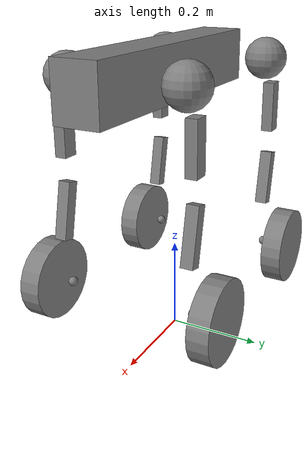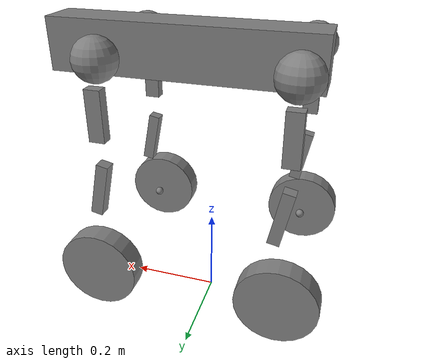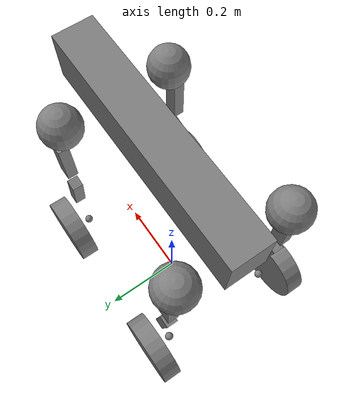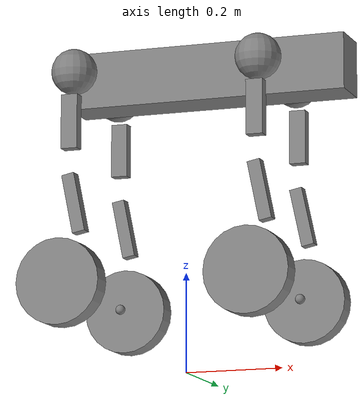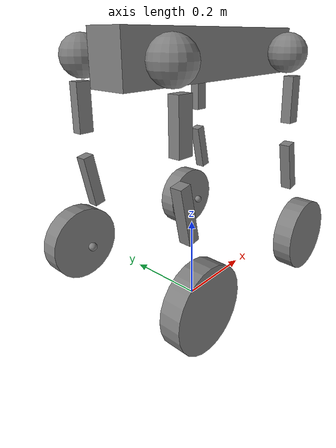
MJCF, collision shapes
<mujoco model="go2">
  <compiler angle="radian" meshdir="assets/"/>

  <option impratio="100" cone="elliptic"/>

  <default>
    <default class="go2">
      <joint armature="0.01" damping="0.1" frictionloss="0.2"/>
      <geom condim="1" friction="0.4" margin="0.001"/>
      <general ctrlrange="-23.7 23.7"/>
      <default class="abduction">
        <joint range="-1.0472 1.0472"/>
      </default>
      <default class="hip">
        <default class="front_hip">
          <joint range="-1.5708 3.4907"/>
        </default>
        <default class="back_hip">
          <joint range="-0.5236 4.5379"/>
        </default>
      </default>
      <default class="knee">
        <joint range="-2.7227 -0.83776"/>
        <general ctrlrange="-45.43 45.43"/>
      </default>
      <default class="visual">
        <geom type="mesh" contype="0" conaffinity="0" group="2"/>
      </default>
      <default class="collision">
        <geom group="3"/>
        <default class="foot">
          <geom size="0.022 0 0" condim="6" priority="1" friction="0.8 0.02 0.01"/>
        </default>
      </default>
    </default>
  </default>

  <asset>
    <material name="metal" rgba="0.9 0.95 0.95 1"/>
    <material name="black" rgba="0 0 0 1"/>
    <material name="white"/>
    <material name="gray" rgba="0.671705 0.692426 0.77427 1"/>
    <mesh name="base_0" file="base_0.obj"/>
    <mesh name="base_1" file="base_1.obj"/>
    <mesh name="base_2" file="base_2.obj"/>
    <mesh name="base_3" file="base_3.obj"/>
    <mesh name="base_4" file="base_4.obj"/>
    <mesh name="hip_0" file="hip_0.obj"/>
    <mesh name="hip_1" file="hip_1.obj"/>
    <mesh name="thigh_0" file="thigh_0.obj"/>
    <mesh name="thigh_1" file="thigh_1.obj"/>
    <mesh name="thigh_mirror_0" file="thigh_mirror_0.obj"/>
    <mesh name="thigh_mirror_1" file="thigh_mirror_1.obj"/>
    <mesh name="calf_mirror_0" file="calf_mirror_0.obj"/>
    <mesh name="calf_mirror_1" file="calf_mirror_1.obj"/>
    <mesh name="calf" file="calf.stl"/>
    <mesh name="calf_mirror" file="calf_mirror.stl"/>
    <mesh name="foot" file="foot.obj"/>
    <mesh name="wheel" file="wheel.stl"/>
  </asset>

  <worldbody>
    <body name="base_link" childclass="go2" pos="0 0 0.6">
      <inertial pos="0.021112 0 -0.005366" quat="-0.000543471 0.713435 -0.00173769 0.700719" mass="6.921" diaginertia="0.107027 0.0980771 0.0244531"/>
      <joint type="free" limited="false" actuatorfrclimited="false" armature="0" damping="0" frictionloss="0"/>
      <geom class="visual" material="black" mesh="base_0"/>
      <geom class="visual" material="black" mesh="base_1"/>
      <geom class="visual" material="black" mesh="base_2"/>
      <geom class="visual" material="white" mesh="base_3"/>
      <geom class="visual" material="gray" mesh="base_4"/>
      <geom name="base_collision" class="collision" pos="0.055 0 0" size="0.29 0.04675 0.057" type="box"/>
      <site name="imu" pos="-0.02557 0 0.04232"/>
      <body name="FL_hip" pos="0.1934 0.0465 0">
        <inertial pos="-0.0054 0.00194 -0.000105" quat="0.497014 0.499245 0.505462 0.498237" mass="0.678" diaginertia="0.00088403 0.000596003 0.000479967"/>
        <joint name="FL_hip_joint" class="abduction" pos="0 0 0" axis="1 0 0"/>
        <geom class="visual" material="metal" mesh="hip_0"/>
        <geom class="visual" material="gray" mesh="hip_1"/>
        <geom name="FL_hip_collision" class="collision" size="0.046" pos="0 0.08 0"/>
        <body name="FL_thigh" pos="0 0.0955 0">
          <inertial pos="-0.00374 -0.0223 -0.0327" quat="0.829533 0.0847635 -0.0200632 0.551623" mass="1.152" diaginertia="0.00594973 0.00584149 0.000878787"/>
          <joint name="FL_thigh_joint" class="front_hip" pos="0 0 0" axis="0 1 0"/>
          <geom class="visual" material="metal" mesh="thigh_0"/>
          <geom class="visual" material="gray" mesh="thigh_1"/>
          <geom name="FL_thigh_collision" class="collision" size="0.055 0.01225 0.017" pos="0 0 -0.1065" quat="0.707107 0 0.707107 0" type="box"/>
          <body name="FL_calf" pos="0 0 -0.213">
            <inertial pos="0.00629595 -0.000622121 -0.141417" quat="0.710672 0.00154099 -0.00450087 0.703508" mass="0.241352" diaginertia="0.0014901 0.00146356 5.31397e-05"/>
            <joint name="FL_calf_joint" class="knee" pos="0 0 0" axis="0 1 0"/>
            <geom class="visual" material="gray" mesh="calf"/>
            <geom name="FL_calf_collision" class="collision" size="0.013 0.013 0.06" pos="0.008 0 -0.06" quat="0.994493 0 -0.104807 0" type="box"/>
            <body name="FL_wheel_link" pos="0 0 -0.2264">
              <inertial pos="0 0.04 0" quat="0.661419 0.248219 0.250051 0.662108" mass="0.98" diaginertia="0.003 0.0016 0.0016"/>
              <joint name="FL_wheel_joint" pos="0 0 0" axis="0 1 0"/>
              <geom name="FL_wheel_visual" class="visual" quat="0 1 0 0" rgba="0.15 0.15 0.15 1" mesh="wheel"/>
              <geom name="FL_wheel_collision" class="collision" size="0.086 0.0225" pos="0 0.048 0" quat="0.707107 0.707107 0 0" type="cylinder"/>
              <site name="FL" pos="0 0 0" size="0.01"/>
            </body>
          </body>
        </body>
      </body>
      <body name="FR_hip" pos="0.1934 -0.0465 0">
        <inertial pos="-0.0054 -0.00194 -0.000105" quat="0.498237 0.505462 0.499245 0.497014" mass="0.678" diaginertia="0.00088403 0.000596003 0.000479967"/>
        <joint name="FR_hip_joint" class="abduction" pos="0 0 0" axis="1 0 0"/>
        <geom class="visual" quat="4.63268e-05 1 0 0" material="metal" mesh="hip_0"/>
        <geom class="visual" quat="4.63268e-05 1 0 0" material="gray" mesh="hip_1"/>
        <geom name="FR_hip_collision" class="collision" size="0.046" pos="0 -0.08 0"/>
        <body name="FR_thigh" pos="0 -0.0955 0">
          <inertial pos="-0.00374 0.0223 -0.0327" quat="0.551623 -0.0200632 0.0847635 0.829533" mass="1.152" diaginertia="0.00594973 0.00584149 0.000878787"/>
          <joint name="FR_thigh_joint" class="front_hip" pos="0 0 0" axis="0 1 0"/>
          <geom class="visual" material="metal" mesh="thigh_mirror_0"/>
          <geom class="visual" material="gray" mesh="thigh_mirror_1"/>
          <geom name="FR_thigh_collision" class="collision" size="0.055 0.01225 0.017" pos="0 0 -0.1065" quat="0.707107 0 0.707107 0" type="box"/>
          <body name="FR_calf" pos="0 0 -0.213">
            <inertial pos="0.00629595 0.000622121 -0.141417" quat="0.703508 -0.00450087 0.00154099 0.710672" mass="0.241352" diaginertia="0.0014901 0.00146356 5.31397e-05"/>
            <joint name="FR_calf_joint" class="knee" pos="0 0 0" axis="0 1 0"/>
            <geom class="visual" material="gray" mesh="calf_mirror"/>
            <geom name="FR_calf_collision" class="collision" size="0.013 0.013 0.06" pos="0.01 0 -0.06" quat="0.995004 0 -0.0998334 0" type="box"/>
            <body name="FR_wheel_link" pos="0 0 -0.2264">
              <inertial pos="0 -0.04 0" quat="0.661419 0.248219 0.250051 0.662108" mass="0.98" diaginertia="0.003 0.0016 0.0016"/>
              <joint name="FR_wheel_joint" pos="0 0 0" axis="0 1 0"/>
              <geom name="FR_wheel_visual" class="visual" rgba="0.15 0.15 0.15 1" mesh="wheel"/>
              <geom name="FR_wheel_collision" class="collision" size="0.086 0.0225" pos="0 -0.048 0" quat="0.707107 0.707107 0 0" type="cylinder"/>
              <site name="FR" pos="0 0 0" size="0.01"/>
            </body>
          </body>
        </body>
      </body>
      <body name="RL_hip" pos="-0.1934 0.0465 0">
        <inertial pos="0.0054 0.00194 -0.000105" quat="0.505462 0.498237 0.497014 0.499245" mass="0.678" diaginertia="0.00088403 0.000596003 0.000479967"/>
        <joint name="RL_hip_joint" class="abduction" pos="0 0 0" axis="1 0 0"/>
        <geom class="visual" quat="4.63268e-05 0 1 0" material="metal" mesh="hip_0"/>
        <geom class="visual" quat="4.63268e-05 0 1 0" material="gray" mesh="hip_1"/>
        <geom name="RL_hip_collision" class="collision" size="0.046" pos="0 0.08 0"/>
        <body name="RL_thigh" pos="0 0.0955 0">
          <inertial pos="-0.00374 -0.0223 -0.0327" quat="0.829533 0.0847635 -0.0200632 0.551623" mass="1.152" diaginertia="0.00594973 0.00584149 0.000878787"/>
          <joint name="RL_thigh_joint" class="back_hip" pos="0 0 0" axis="0 1 0"/>
          <geom class="visual" material="metal" mesh="thigh_0"/>
          <geom class="visual" material="gray" mesh="thigh_1"/>
          <geom name="RL_thigh_collision" class="collision" size="0.055 0.01225 0.017" pos="0 0 -0.1065" quat="0.707107 0 0.707107 0" type="box"/>
          <body name="RL_calf" pos="0 0 -0.213">
            <inertial pos="0.00629595 -0.000622121 -0.141417" quat="0.710672 0.00154099 -0.00450087 0.703508" mass="0.241352" diaginertia="0.0014901 0.00146356 5.31397e-05"/>
            <joint name="RL_calf_joint" class="knee" pos="0 0 0" axis="0 1 0"/>
            <geom class="visual" material="gray" mesh="calf"/>
            <geom name="RL_calf_collision" class="collision" size="0.013 0.013 0.06" pos="0.01 0 -0.06" quat="0.995004 0 -0.0998334 0" type="box"/>
            <body name="RL_wheel_link" pos="0 0 -0.2264">
              <inertial pos="0 0.04 0" quat="0.661419 0.248219 0.250051 0.662108" mass="0.98" diaginertia="0.003 0.0016 0.0016"/>
              <joint name="RL_wheel_joint" pos="0 0 0" axis="0 1 0"/>
              <geom name="RL_wheel_visual" class="visual" quat="0 1 0 0" rgba="0.15 0.15 0.15 1" mesh="wheel"/>
              <geom name="RL_wheel_collision" class="collision" size="0.086 0.0225" pos="0 0.048 0" quat="0.707107 0.707107 0 0" type="cylinder"/>
              <site name="RL" pos="0 0 0" size="0.01"/>
            </body>
          </body>
        </body>
      </body>
      <body name="RR_hip" pos="-0.1934 -0.0465 0">
        <inertial pos="0.0054 -0.00194 -0.000105" quat="0.499245 0.497014 0.498237 0.505462" mass="0.678" diaginertia="0.00088403 0.000596003 0.000479967"/>
        <joint name="RR_hip_joint" class="abduction" pos="0 0 0" axis="1 0 0"/>
        <geom class="visual" quat="2.14617e-09 4.63268e-05 4.63268e-05 -1" material="metal" mesh="hip_0"/>
        <geom class="visual" quat="2.14617e-09 4.63268e-05 4.63268e-05 -1" material="gray" mesh="hip_1"/>
        <geom name="RR_hip_collision" class="collision" size="0.046" pos="0 -0.08 0"/>
        <body name="RR_thigh" pos="0 -0.0955 0">
          <inertial pos="-0.00374 0.0223 -0.0327" quat="0.551623 -0.0200632 0.0847635 0.829533" mass="1.152" diaginertia="0.00594973 0.00584149 0.000878787"/>
          <joint name="RR_thigh_joint" class="back_hip" pos="0 0 0" axis="0 1 0"/>
          <geom class="visual" material="metal" mesh="thigh_mirror_0"/>
          <geom class="visual" material="gray" mesh="thigh_mirror_1"/>
          <geom name="RR_thigh_collision" class="collision" size="0.055 0.01225 0.017" pos="0 0 -0.1065" quat="0.707107 0 0.707107 0" type="box"/>
          <body name="RR_calf" pos="0 0 -0.213">
            <inertial pos="0.00629595 0.000622121 -0.141417" quat="0.703508 -0.00450087 0.00154099 0.710672" mass="0.241352" diaginertia="0.0014901 0.00146356 5.31397e-05"/>
            <joint name="RR_calf_joint" class="knee" pos="0 0 0" axis="0 1 0"/>
            <geom class="visual" material="gray" mesh="calf_mirror"/>
            <geom name="RR_calf_collision" class="collision" size="0.013 0.013 0.06" pos="0.01 0 -0.06" quat="0.995004 0 -0.0998334 0" type="box"/>
            <body name="RR_wheel_link" pos="0 0 -0.2264">
              <inertial pos="0 -0.04 0" quat="0.661419 0.248219 0.250051 0.662108" mass="0.98" diaginertia="0.003 0.0016 0.0016"/>
              <joint name="RR_wheel_joint" pos="0 0 0" axis="0 1 0"/>
              <geom name="RR_wheel_visual" class="visual" rgba="0.15 0.15 0.15 1" mesh="wheel"/>
              <geom name="RR_wheel_collision" class="collision" size="0.086 0.0225" pos="0 -0.048 0" quat="0.707107 0.707107 0 0" type="cylinder"/>
              <site name="RR" pos="0 0 0" size="0.01"/>
            </body>
          </body>
        </body>
      </body>
    </body>
  </worldbody>

  <actuator>
    <general name="FR_hip" class="abduction" joint="FR_hip_joint"/>
    <general name="FR_thigh" class="hip" joint="FR_thigh_joint"/>
    <general name="FR_calf" class="knee" joint="FR_calf_joint"/>
    <general name="FL_hip" class="abduction" joint="FL_hip_joint"/>
    <general name="FL_thigh" class="hip" joint="FL_thigh_joint"/>
    <general name="FL_calf" class="knee" joint="FL_calf_joint"/>
    <general name="RR_hip" class="abduction" joint="RR_hip_joint"/>
    <general name="RR_thigh" class="hip" joint="RR_thigh_joint"/>
    <general name="RR_calf" class="knee" joint="RR_calf_joint"/>
    <general name="RL_hip" class="abduction" joint="RL_hip_joint"/>
    <general name="RL_thigh" class="hip" joint="RL_thigh_joint"/>
    <general name="RL_calf" class="knee" joint="RL_calf_joint"/>
    <general name="FR_wheel" joint="FR_wheel_joint" ctrlrange="-15 15"/>
    <general name="FL_wheel" joint="FL_wheel_joint" ctrlrange="-15 15"/>
    <general name="RR_wheel" joint="RR_wheel_joint" ctrlrange="-15 15"/>
    <general name="RL_wheel" joint="RL_wheel_joint" ctrlrange="-15 15"/>
  </actuator>

  <sensor>
    <jointpos joint="FR_hip_joint" name="FR_hip_pos"/>
    <jointpos joint="FR_thigh_joint" name="FR_thigh_pos"/>
    <jointpos joint="FR_calf_joint" name="FR_calf_pos"/>
    <jointpos joint="FL_hip_joint" name="FL_hip_pos"/>
    <jointpos joint="FL_thigh_joint" name="FL_thigh_pos"/>
    <jointpos joint="FL_calf_joint" name="FL_calf_pos"/>
    <jointpos joint="RR_hip_joint" name="RR_hip_pos"/>
    <jointpos joint="RR_thigh_joint" name="RR_thigh_pos"/>
    <jointpos joint="RR_calf_joint" name="RR_calf_pos"/>
    <jointpos joint="RL_hip_joint" name="RL_hip_pos"/>
    <jointpos joint="RL_thigh_joint" name="RL_thigh_pos"/>
    <jointpos joint="RL_calf_joint" name="RL_calf_pos"/>
    <jointpos joint="FR_wheel_joint" name="FR_wheel_pos"/>
    <jointpos joint="FL_wheel_joint" name="FL_wheel_pos"/>
    <jointpos joint="RR_wheel_joint" name="RR_wheel_pos"/>
    <jointpos joint="RL_wheel_joint" name="RL_wheel_pos"/>
    <jointvel joint="FR_hip_joint" name="FR_hip_vel"/>
    <jointvel joint="FR_thigh_joint" name="FR_thigh_vel"/>
    <jointvel joint="FR_calf_joint" name="FR_calf_vel"/>
    <jointvel joint="FL_hip_joint" name="FL_hip_vel"/>
    <jointvel joint="FL_thigh_joint" name="FL_thigh_vel"/>
    <jointvel joint="FL_calf_joint" name="FL_calf_vel"/>
    <jointvel joint="RR_hip_joint" name="RR_hip_vel"/>
    <jointvel joint="RR_thigh_joint" name="RR_thigh_vel"/>
    <jointvel joint="RR_calf_joint" name="RR_calf_vel"/>
    <jointvel joint="RL_hip_joint" name="RL_hip_vel"/>
    <jointvel joint="RL_thigh_joint" name="RL_thigh_vel"/>
    <jointvel joint="RL_calf_joint" name="RL_calf_vel"/>
    <jointvel joint="FR_wheel_joint" name="FR_wheel_vel"/>
    <jointvel joint="FL_wheel_joint" name="FL_wheel_vel"/>
    <jointvel joint="RR_wheel_joint" name="RR_wheel_vel"/>
    <jointvel joint="RL_wheel_joint" name="RL_wheel_vel"/>
    <jointactuatorfrc joint="FR_hip_joint" name="FR_hip_torque" noise="0.01"/>
    <jointactuatorfrc joint="FR_thigh_joint" name="FR_thigh_torque" noise="0.01"/>
    <jointactuatorfrc joint="FR_calf_joint" name="FR_calf_torque" noise="0.01"/>
    <jointactuatorfrc joint="FL_hip_joint" name="FL_hip_torque" noise="0.01"/>
    <jointactuatorfrc joint="FL_thigh_joint" name="FL_thigh_torque" noise="0.01"/>
    <jointactuatorfrc joint="FL_calf_joint" name="FL_calf_torque" noise="0.01"/>
    <jointactuatorfrc joint="RR_hip_joint" name="RR_hip_torque" noise="0.01"/>
    <jointactuatorfrc joint="RR_thigh_joint" name="RR_thigh_torque" noise="0.01"/>
    <jointactuatorfrc joint="RR_calf_joint" name="RR_calf_torque" noise="0.01"/>
    <jointactuatorfrc joint="RL_hip_joint" name="RL_hip_torque" noise="0.01"/>
    <jointactuatorfrc joint="RL_thigh_joint" name="RL_thigh_torque" noise="0.01"/>
    <jointactuatorfrc joint="RL_calf_joint" name="RL_calf_torque" noise="0.01"/>
    <jointactuatorfrc joint="FR_wheel_joint" name="FR_wheel_torque"/>
    <jointactuatorfrc joint="FL_wheel_joint" name="FL_wheel_torque"/>
    <jointactuatorfrc joint="RR_wheel_joint" name="RR_wheel_torque"/>
    <jointactuatorfrc joint="RL_wheel_joint" name="RL_wheel_torque"/>
    <framequat objtype="site" objname="imu" name="imu_quat"/>
    <gyro site="imu" name="imu_gyro"/>
    <accelerometer site="imu" name="imu_acc"/>
    <framepos objtype="site" objname="imu" name="frame_pos"/>
    <framelinvel objtype="site" objname="imu" name="frame_vel"/>
  </sensor>
</mujoco>
